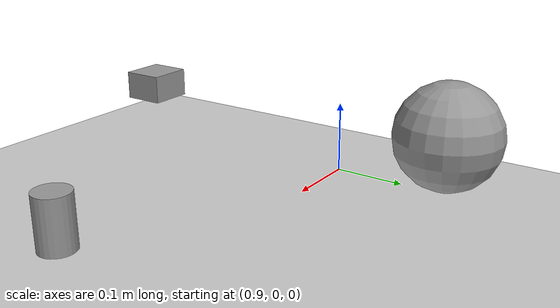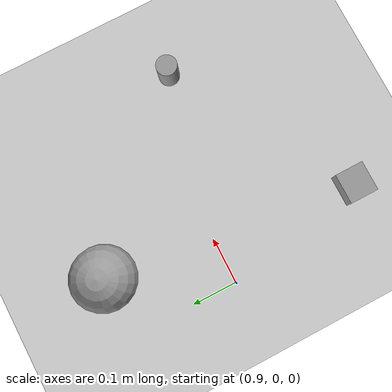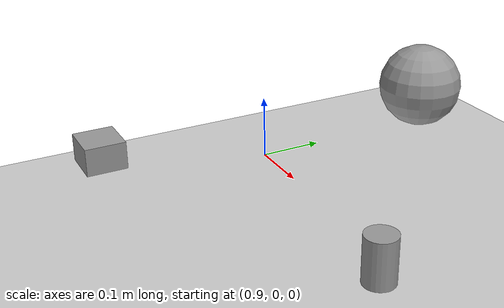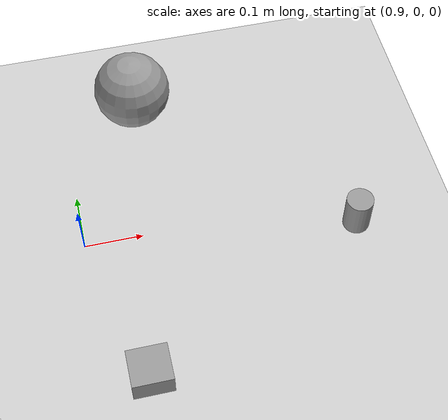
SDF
<sdf version="1.6">
 <world name="default">
  <light name="sun" type="directional">
   <pose>0 0 10 0 -0 0</pose>
   <diffuse>0.8 0.8 0.8 1</diffuse>
   <specular>0.2 0.2 0.2 1</specular>
   <attenuation>
    <range>1000</range>
    <constant>0.9</constant>
    <linear>0.01</linear>
    <quadratic>0.001</quadratic>
   </attenuation>
   <direction>-0.5 0.1 -0.9</direction>
  </light>
  <model name="ground_plane">
   <static>1</static>
   <link name="link">
    <collision name="collision">
     <geometry><plane><normal>0 0 1</normal><size>100 100</size></plane></geometry>
     <surface>
      <contact><collide_bitmask>65535</collide_bitmask></contact>
      <friction><ode><mu>100</mu><mu2>50</mu2></ode></friction>
     </surface>
    </collision>
    <visual name="visual">
     <cast_shadows>0</cast_shadows>
     <geometry><plane><normal>0 0 1</normal><size>100 100</size></plane></geometry>
     <material>
      <script><uri>file://media/materials/scripts/gazebo.material</uri><name>Gazebo/Grey</name></script>
     </material>
    </visual>
   </link>
  </model>
  <gravity>0 0 -9.8</gravity>
  <magnetic_field>6e-06 2.3e-05 -4.2e-05</magnetic_field>
  <atmosphere type="adiabatic"/>
  <physics name="default_physics" default="0" type="ode">
   <max_step_size>0.001</max_step_size>
   <real_time_factor>1</real_time_factor>
   <real_time_update_rate>1000</real_time_update_rate>
  </physics>
  <scene><ambient>0.4 0.4 0.4 1</ambient><background>0.7 0.7 0.7 1</background><shadows>1</shadows></scene>
  <audio><device>default</device></audio>
  <spherical_coordinates>
   <surface_model>EARTH_WGS84</surface_model>
   <latitude_deg>0</latitude_deg>
   <longitude_deg>0</longitude_deg>
   <elevation>0</elevation>
   <heading_deg>0</heading_deg>
  </spherical_coordinates>
  <model name="unit_box">
   <pose>0.964497 -0.29182 0.100439 0 -0 0</pose>
   <link name="link">
    <inertial>
     <mass>1</mass>
     <inertia>
      <ixx>0.166667</ixx>
      <ixy>0</ixy>
      <ixz>0</ixz>
      <iyy>0.166667</iyy>
      <iyz>0</iyz>
      <izz>0.166667</izz>
     </inertia>
    </inertial>
    <collision name="collision">
     <geometry><box><size>0.0617018 0.0583784 0.0401756</size></box></geometry>
    </collision>
    <visual name="visual">
     <geometry><box><size>0.0617018 0.0583784 0.0401756</size></box></geometry>
     <material>
      <script><name>Gazebo/Grey</name><uri>file://media/materials/scripts/gazebo.material</uri></script>
     </material>
    </visual>
   </link>
  </model>
  <model name="unit_sphere">
   <pose>1.02674 0.213889 0.128514 0 -0 0</pose>
   <link name="link">
    <inertial>
     <mass>1</mass>
     <inertia><ixx>0.1</ixx><ixy>0</ixy><ixz>0</ixz><iyy>0.1</iyy><iyz>0</iyz><izz>0.1</izz></inertia>
    </inertial>
    <collision name="collision"><geometry><sphere><radius>0.064257</radius></sphere></geometry></collision>
    <visual name="visual">
     <geometry><sphere><radius>0.064257</radius></sphere></geometry>
     <material>
      <script><name>Gazebo/Grey</name><uri>file://media/materials/scripts/gazebo.material</uri></script>
     </material>
    </visual>
   </link>
  </model>
  <model name="unit_cylinder">
   <pose>1.34665 -0.077159 0.073259 -3e-06 -0 -0</pose>
   <link name="link">
    <inertial>
     <mass>1</mass>
     <inertia><ixx>0.145833</ixx><ixy>0</ixy><ixz>0</ixz><iyy>0.145833</iyy><iyz>0</iyz><izz>0.125</izz></inertia>
    </inertial>
    <collision name="collision">
     <geometry><cylinder><radius>0.0221226</radius><length>0.0659345</length></cylinder></geometry>
    </collision>
    <visual name="visual">
     <geometry><cylinder><radius>0.0221226</radius><length>0.0659345</length></cylinder></geometry>
     <material>
      <script><name>Gazebo/Grey</name><uri>file://media/materials/scripts/gazebo.material</uri></script>
     </material>
    </visual>
   </link>
  </model>
 </world>
</sdf>
